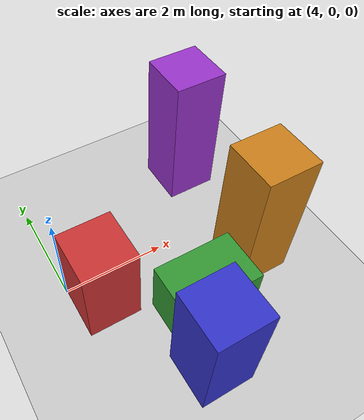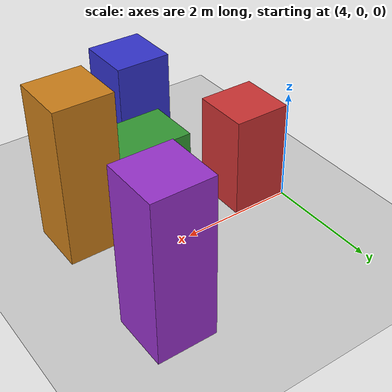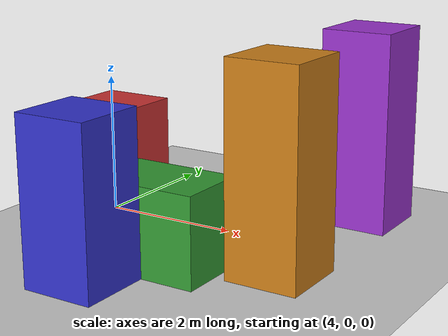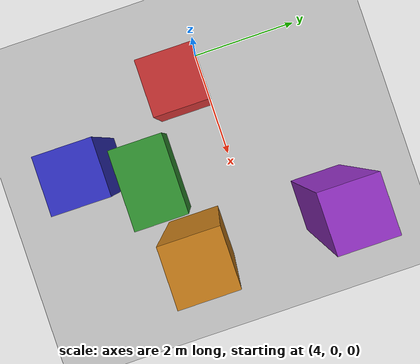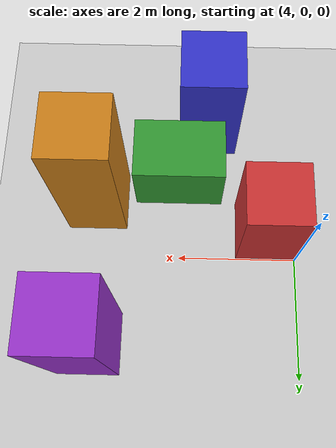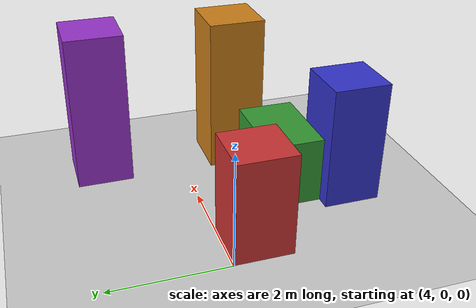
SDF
<?xml version="1.0" ?>
<sdf version="1.5">
  <world name="default">
    <include>
      <uri>model://sun</uri>
    </include>
    <include>
      <uri>model://ground_plane</uri>
    </include>
    <include>
      <uri>model://asphalt_plane</uri>
    </include>
    <physics name="default_physics" default="0" type="ode">
      <gravity>0 0 -9.8066</gravity>
      <ode>
        <solver>
          <type>quick</type>
          <iters>10</iters>
          <sor>1.3</sor>
          <use_dynamic_moi_rescaling>0</use_dynamic_moi_rescaling>
        </solver>
        <constraints>
          <cfm>0</cfm>
          <erp>0.2</erp>
          <contact_max_correcting_vel>100</contact_max_correcting_vel>
          <contact_surface_layer>0.001</contact_surface_layer>
        </constraints>
      </ode>
      <max_step_size>0.004</max_step_size>
      <real_time_factor>1</real_time_factor>
      <real_time_update_rate>250</real_time_update_rate>
    </physics>
    <scene>
      <ambient>0.4 0.4 0.4 1</ambient>
      <background>0.7 0.7 0.7 1</background>
      <shadows>0</shadows>
    </scene>

    <model name="box_A">
      <pose>4.51 -0.52 0.9 0 0 0</pose>
      <static>true</static>
      <link name="link">
        <collision name="collision">
          <geometry><box><size>1.0 1.0 1.8</size></box></geometry>
        </collision>
        <visual name="visual">
          <geometry><box><size>1.0 1.0 1.8</size></box></geometry>
          <material>
            <ambient>0.8 0.2 0.2 1</ambient>
            <diffuse>0.8 0.2 0.2 1</diffuse>
          </material>
        </visual>
      </link>
    </model>

    <model name="box_B">
      <pose>6.01 -1.52 0.6 0 0 0</pose>
      <static>true</static>
      <link name="link">
        <collision name="collision">
          <geometry><box><size>1.5 1.0 1.2</size></box></geometry>
        </collision>
        <visual name="visual">
          <geometry><box><size>1.5 1.0 1.2</size></box></geometry>
          <material>
            <ambient>0.2 0.6 0.2 1</ambient>
            <diffuse>0.2 0.6 0.2 1</diffuse>
          </material>
        </visual>
      </link>
    </model>

    <model name="box_C">
      <pose>5.51 -2.52 1.1 0 0 0</pose>
      <static>true</static>
      <link name="link">
        <collision name="collision">
          <geometry><box><size>1.0 1.0 2.2</size></box></geometry>
        </collision>
        <visual name="visual">
          <geometry><box><size>1.0 1.0 2.2</size></box></geometry>
          <material>
            <ambient>0.2 0.2 0.8 1</ambient>
            <diffuse>0.2 0.2 0.8 1</diffuse>
          </material>
        </visual>
      </link>
    </model>

    <model name="box_D">
      <pose>7.41 -1.02 1.4 0 0 0</pose>
      <static>true</static>
      <link name="link">
        <collision name="collision">
          <geometry><box><size>1.0 1.0 2.8</size></box></geometry>
        </collision>
        <visual name="visual">
          <geometry><box><size>1.0 1.0 2.8</size></box></geometry>
          <material>
            <ambient>0.8 0.5 0.1 1</ambient>
            <diffuse>0.8 0.5 0.1 1</diffuse>
          </material>
        </visual>
      </link>
    </model>

    <model name="box_E">
      <pose>7.41 1.48 1.4 0 0 0</pose>
      <static>true</static>
      <link name="link">
        <collision name="collision">
          <geometry><box><size>1.0 1.0 2.8</size></box></geometry>
        </collision>
        <visual name="visual">
          <geometry><box><size>1.0 1.0 2.8</size></box></geometry>
          <material>
            <ambient>0.6 0.2 0.8 1</ambient>
            <diffuse>0.6 0.2 0.8 1</diffuse>
          </material>
        </visual>
      </link>
    </model>
  </world>
</sdf>
